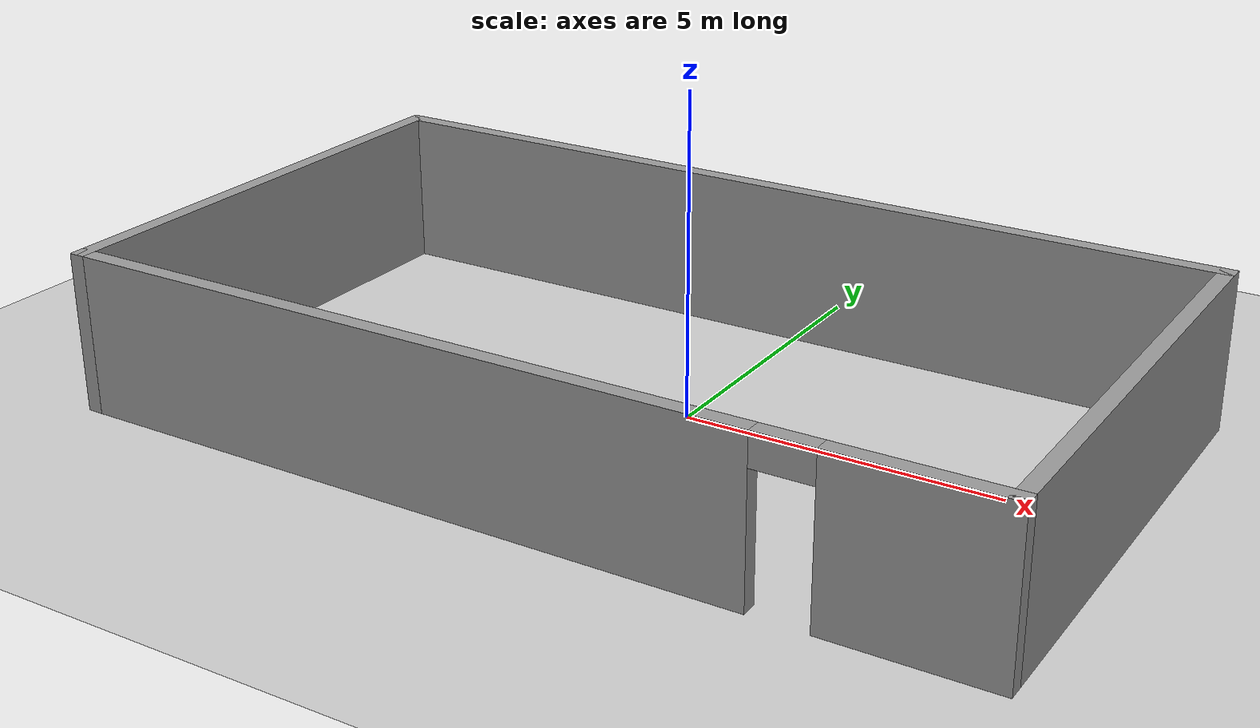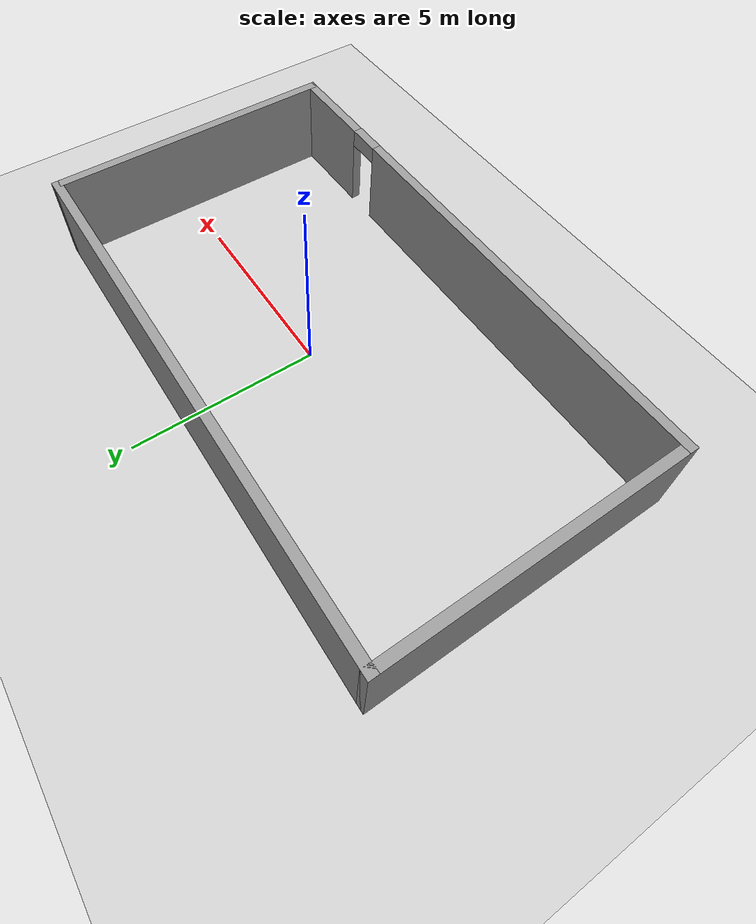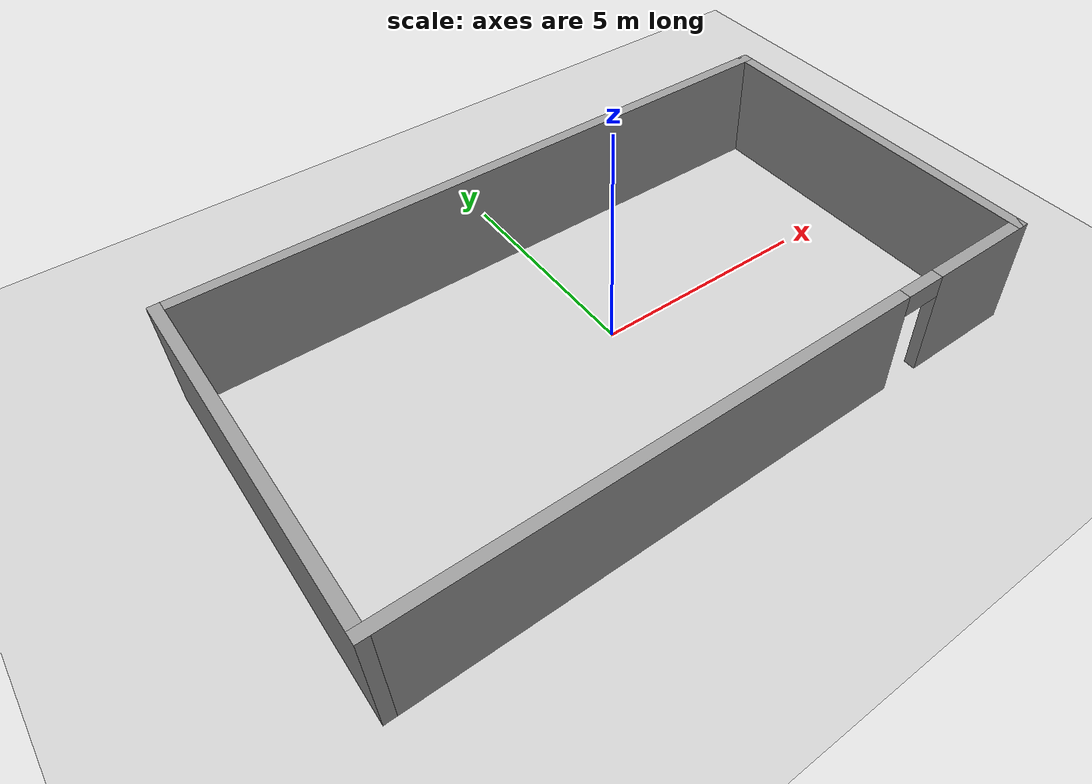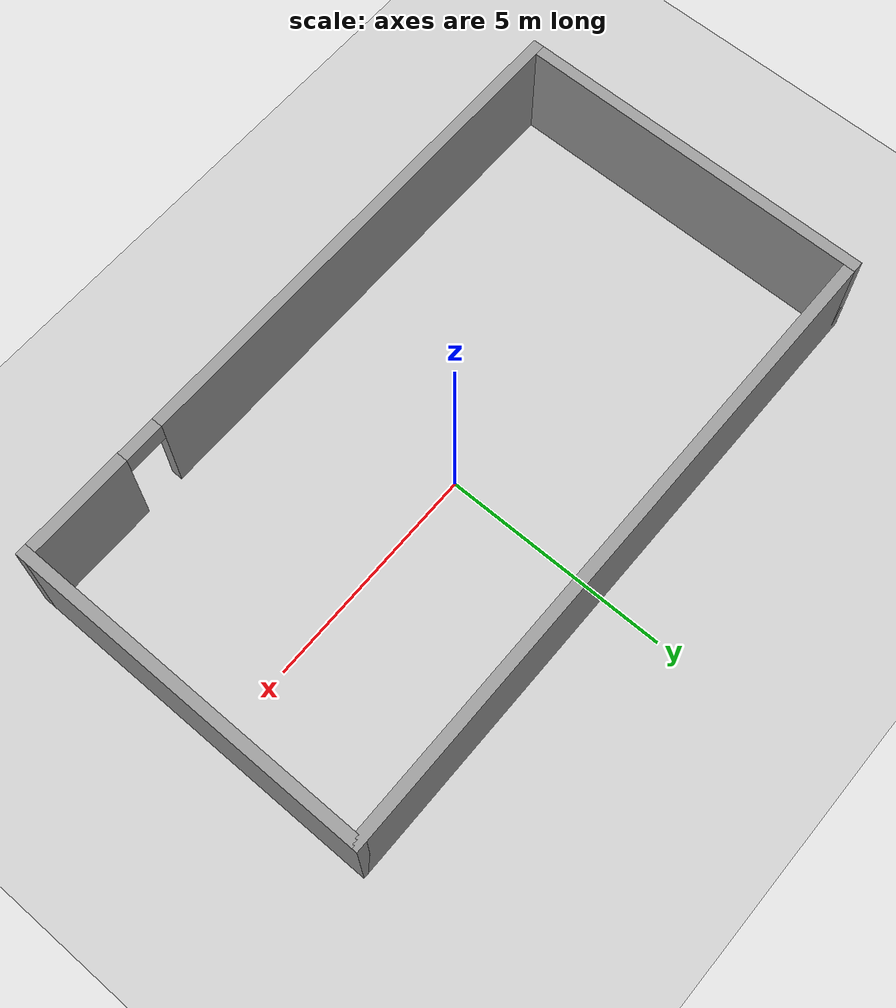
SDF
<sdf version="1.6">
 <world name="default">
  <light name="sun" type="directional">
   <pose>0 0 10 0 -0 0</pose>
   <diffuse>0.8 0.8 0.8 1</diffuse>
   <specular>0.1 0.1 0.1 1</specular>
   <attenuation>
    <range>1000</range>
    <constant>0.9</constant>
    <linear>0.01</linear>
    <quadratic>0.001</quadratic>
   </attenuation>
   <direction>-0.5 0.5 -1</direction>
  </light>
  <model name="ground_plane">
   <static>1</static>
   <link name="link">
    <collision name="collision">
     <geometry><plane><normal>0 0 1</normal><size>100 100</size></plane></geometry>
     <surface><friction><ode><mu>100</mu><mu2>50</mu2></ode></friction></surface>
    </collision>
    <visual name="visual">
     <cast_shadows>0</cast_shadows>
     <geometry><plane><normal>0 0 1</normal><size>100 100</size></plane></geometry>
     <material>
      <script><uri>file://media/materials/scripts/gazebo.material</uri><name>Gazebo/Grey</name></script>
     </material>
    </visual>
   </link>
  </model>
  <gravity>0 0 -9.8</gravity>
  <magnetic_field>6e-06 2.3e-05 -4.2e-05</magnetic_field>
  <atmosphere type="adiabatic"/>
  <physics name="default_physics" default="0" type="ode">
   <max_step_size>0.001</max_step_size>
   <real_time_factor>1</real_time_factor>
   <real_time_update_rate>1000</real_time_update_rate>
  </physics>
  <scene><ambient>0.4 0.4 0.4 1</ambient><background>0.7 0.7 0.7 1</background><shadows>1</shadows></scene>
  <spherical_coordinates>
   <surface_model>EARTH_WGS84</surface_model>
   <latitude_deg>0</latitude_deg>
   <longitude_deg>0</longitude_deg>
   <elevation>0</elevation>
   <heading_deg>0</heading_deg>
  </spherical_coordinates>
  <model name="room">
   <pose>-0.448 -0.39 0 0 -0 0</pose>
   <link name="Wall_25">
    <collision name="Wall_25_Collision">
     <geometry><box><size>14.5997 0.25 2.5</size></box></geometry>
     <pose>0 0 1.25 0 -0 0</pose>
    </collision>
    <visual name="Wall_25_Visual">
     <pose>0 0 1.25 0 -0 0</pose>
     <geometry><box><size>14.5997 0.25 2.5</size></box></geometry>
     <material>
      <script><uri>file://media/materials/scripts/gazebo.material</uri><name>Gazebo/Grey</name></script>
      <ambient>1 1 1 1</ambient>
     </material>
     <meta><layer>0</layer></meta>
    </visual>
    <pose>0 3.925 0 0 -0 0</pose>
   </link>
   <link name="Wall_26">
    <collision name="Wall_26_Collision">
     <geometry><box><size>8.1 0.25 2.5</size></box></geometry>
     <pose>0 0 1.25 0 -0 0</pose>
    </collision>
    <visual name="Wall_26_Visual">
     <pose>0 0 1.25 0 -0 0</pose>
     <geometry><box><size>8.1 0.25 2.5</size></box></geometry>
     <material>
      <script><uri>file://media/materials/scripts/gazebo.material</uri><name>Gazebo/Grey</name></script>
      <ambient>1 1 1 1</ambient>
     </material>
     <meta><layer>0</layer></meta>
    </visual>
    <pose>7.175 0 0 0 0 -1.5708</pose>
   </link>
   <link name="Wall_27">
    <pose>0 -3.925 0 0 -0 3.14159</pose>
    <visual name="Wall_27_Visual_0">
     <pose>-6.01987 0 1.25 0 -0 0</pose>
     <geometry><box><size>2.56026 0.25 2.5</size></box></geometry>
     <material>
      <script><uri>file://media/materials/scripts/gazebo.material</uri><name>Gazebo/Grey</name></script>
      <ambient>1 1 1 1</ambient>
     </material>
     <meta><layer>0</layer></meta>
    </visual>
    <collision name="Wall_27_Collision_0">
     <geometry><box><size>2.56026 0.25 2.5</size></box></geometry>
     <pose>-6.01987 0 1.25 0 -0 0</pose>
    </collision>
    <visual name="Wall_27_Visual_1">
     <pose>1.73013 0 1.25 0 -0 0</pose>
     <geometry><box><size>11.1397 0.25 2.5</size></box></geometry>
     <material>
      <script><uri>file://media/materials/scripts/gazebo.material</uri><name>Gazebo/Grey</name></script>
      <ambient>1 1 1 1</ambient>
     </material>
     <meta><layer>0</layer></meta>
    </visual>
    <collision name="Wall_27_Collision_1">
     <geometry><box><size>11.1397 0.25 2.5</size></box></geometry>
     <pose>1.73013 0 1.25 0 -0 0</pose>
    </collision>
    <visual name="Wall_27_Visual_2">
     <pose>-4.28974 0 2.25 0 -0 0</pose>
     <geometry><box><size>0.9 0.25 0.5</size></box></geometry>
     <material>
      <script><uri>file://media/materials/scripts/gazebo.material</uri><name>Gazebo/Grey</name></script>
      <ambient>1 1 1 1</ambient>
     </material>
     <meta><layer>0</layer></meta>
    </visual>
    <collision name="Wall_27_Collision_2">
     <geometry><box><size>0.9 0.25 0.5</size></box></geometry>
     <pose>-4.28974 0 2.25 0 -0 0</pose>
    </collision>
   </link>
   <link name="Wall_28">
    <collision name="Wall_28_Collision">
     <geometry><box><size>8.1 0.25 2.5</size></box></geometry>
     <pose>0 0 1.25 0 -0 0</pose>
    </collision>
    <visual name="Wall_28_Visual">
     <pose>0 0 1.25 0 -0 0</pose>
     <geometry><box><size>8.1 0.25 2.5</size></box></geometry>
     <material>
      <script><uri>file://media/materials/scripts/gazebo.material</uri><name>Gazebo/Grey</name></script>
      <ambient>1 1 1 1</ambient>
     </material>
     <meta><layer>0</layer></meta>
    </visual>
    <pose>-7.175 0 0 0 -0 1.5708</pose>
   </link>
   <static>1</static>
  </model>
 </world>
</sdf>
